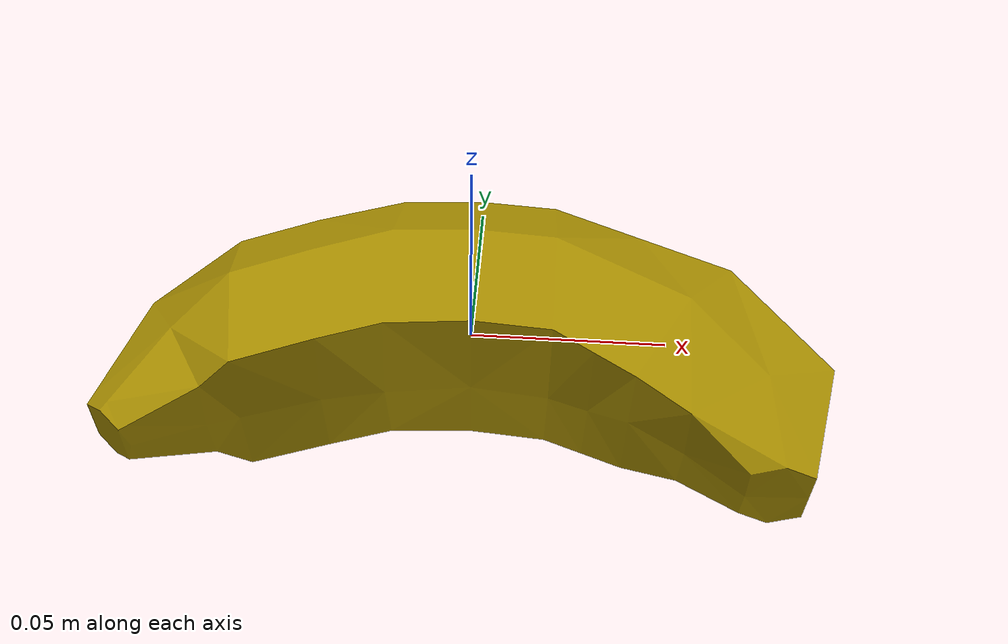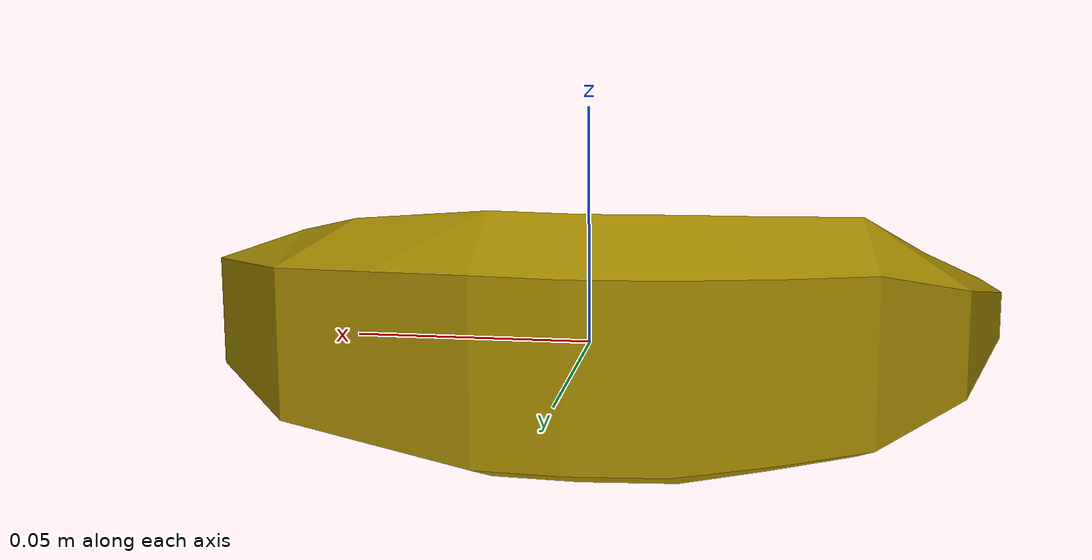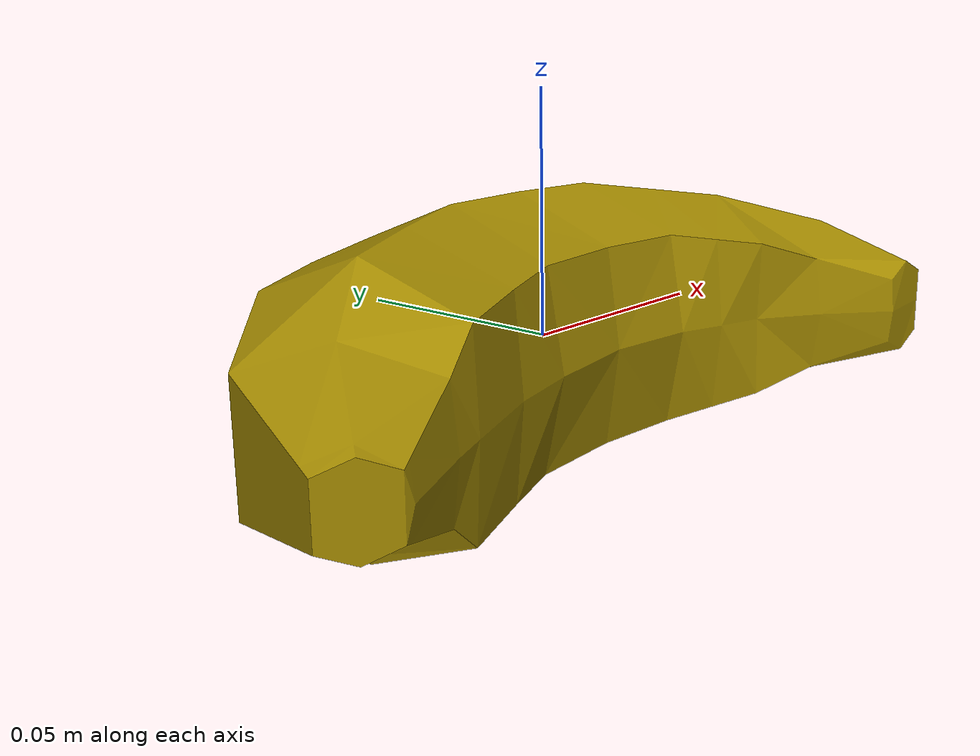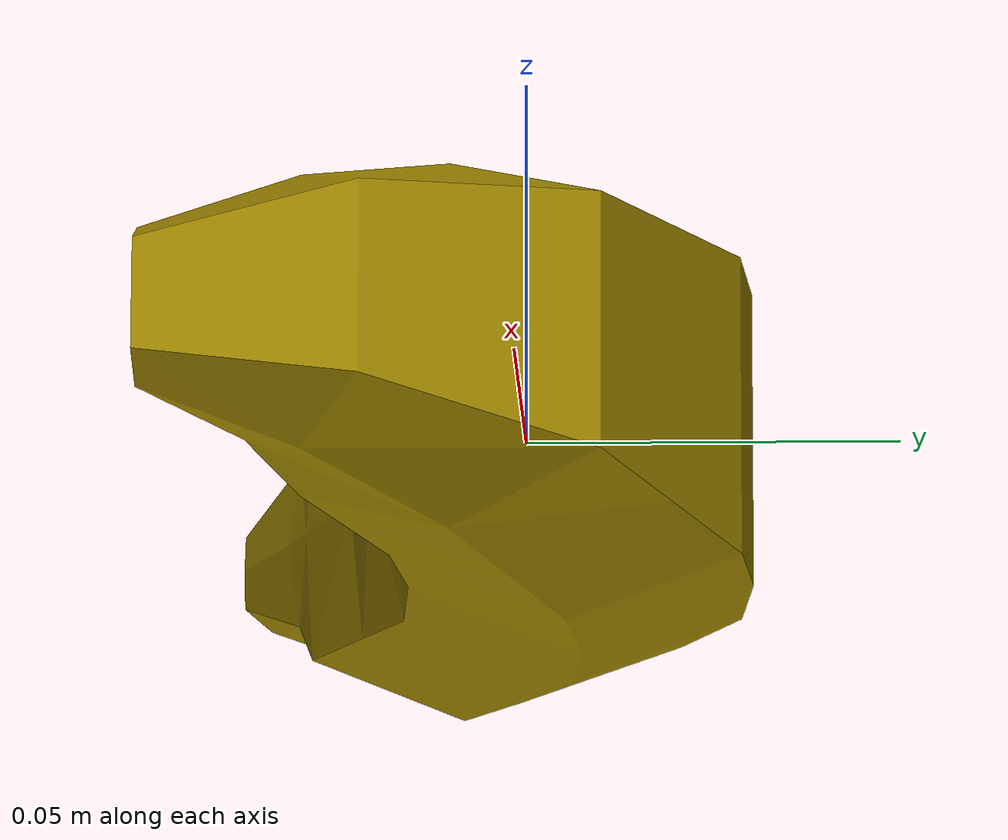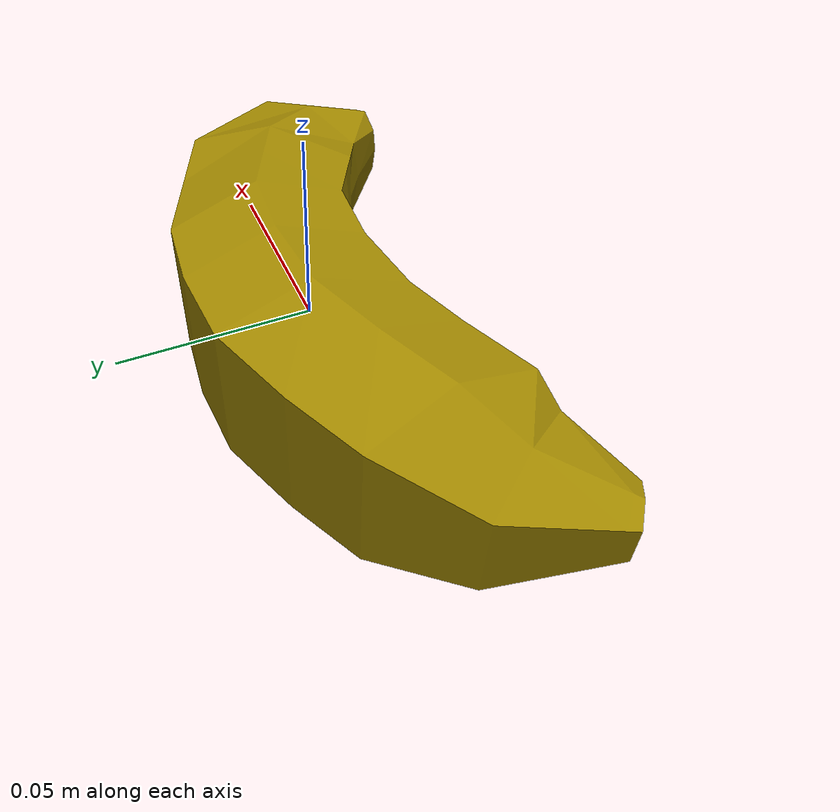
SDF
<?xml version="1.0" ?>
<sdf version="1.5">
  <model name="banana">
    <link name="banana">
      <gravity>true</gravity>

      <inertial>
        <mass>0.02</mass>
        <inertia>
          <ixx>0.000004</ixx>  <ixy>0</ixy> <ixz>0</ixz>
          <iyy>0.000068</iyy>  <iyz>0</iyz>
          <izz>0.000068</izz>
        </inertia>
      </inertial>

      <collision name="banana_collision">
        <geometry>
          <mesh>
            <uri>model://banana/meshes/banana.dae</uri>
          </mesh>
        </geometry>
        <surface>
          <friction>
            <ode>
              <mu>1000.0</mu>
              <mu2>1000.0</mu2>
            </ode>
          </friction>
          <contact>
            <ode>
              <kp>1000000.0</kp>
              <kd>1.0</kd>
              <min_depth>0.001</min_depth>
              <max_vel>0.0</max_vel>
            </ode>
          </contact>
        </surface>
      </collision>

      <visual name="banana_visual">
        <geometry>
          <mesh>
            <uri>model://banana/meshes/banana.dae</uri>
          </mesh>
        </geometry>
      </visual>

    </link>
  </model>
</sdf>
